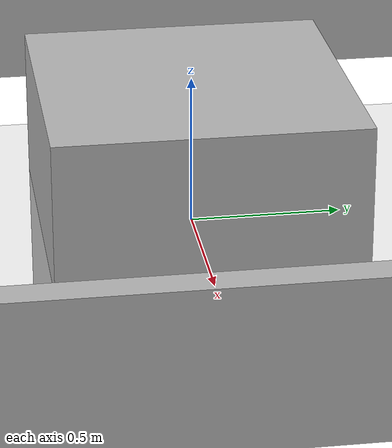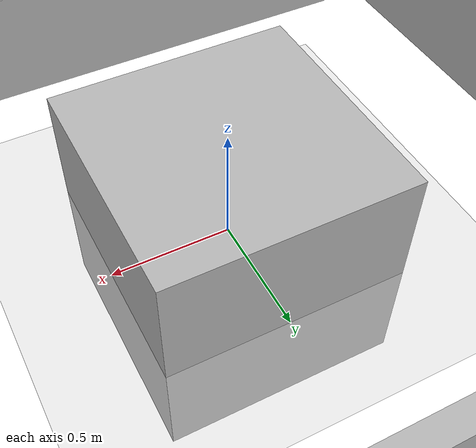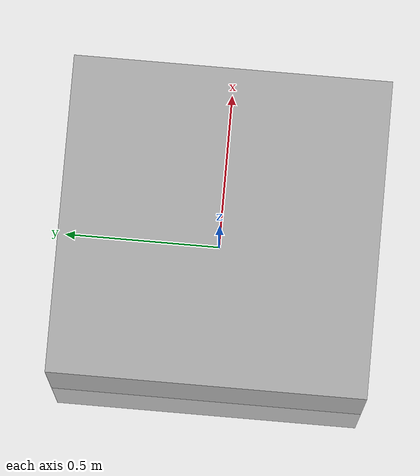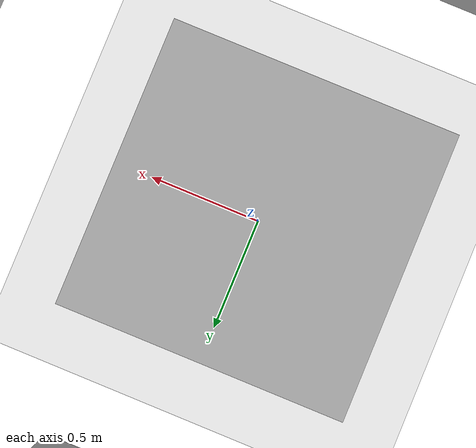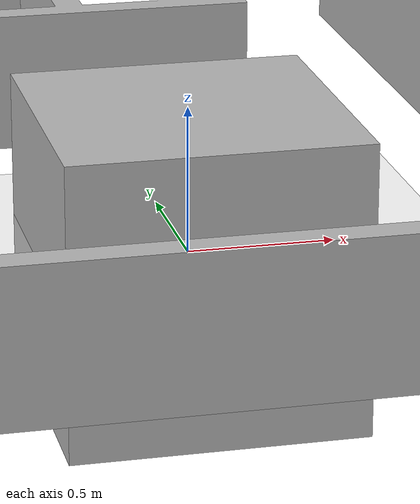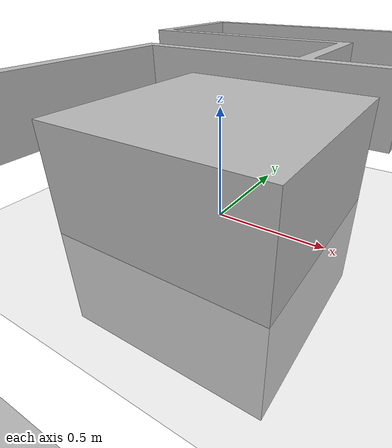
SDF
<?xml version="1.0" ?>
<sdf version="1.5">
  <world name="default">
    <include>
      <uri>model://sun</uri>
    </include>
    <include>
      <uri>model://ground_plane</uri>
    </include>
    <include>
      <uri>model://box2</uri>
      <pose>0 0 0 0 0 0</pose>
    </include>
    <include>
      <uri>model://room1</uri>
      <pose>0 0 0 0 0 0</pose>
    </include>
  </world>
</sdf>

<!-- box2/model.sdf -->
<sdf version="1.4">
<model name="box2">
  <pose>0 0 0.5 0 0 0</pose>
    <link name="link">
      <inertial>
        <mass>1.0</mass>
        <inertia>
          <ixx>0.083</ixx>
          <ixy>0.0</ixy>
          <ixz>0.0</ixz>
          <iyy>0.083</iyy>
          <iyz>0.0</iyz>
          <izz>0.083</izz>
        </inertia>
      </inertial>
      <collision name="collision">
        <geometry>
          <box>
            <size>1 1 1</size>
          </box>
        </geometry>
      </collision>
      <visual name="visual">
        <geometry>
          <box>
            <size>1 1 1</size>
          </box>
        </geometry>
        <material>
          <script>
            <uri>model://box2/materials/test_texture.material</uri>
            <name>TestTexture</name>
          </script>
        </material>
      </visual>
    </link>
  </model>
</sdf>

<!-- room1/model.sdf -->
<sdf version="1.4">
<model name="room1">
  <pose>0 0 0.5 0 0 0</pose>
    <link name="link">
      <inertial>
        <mass>1.0</mass>
        <inertia>
          <ixx>0.083</ixx>
          <ixy>0.0</ixy>
          <ixz>0.0</ixz>
          <iyy>0.083</iyy>
          <iyz>0.0</iyz>
          <izz>0.083</izz>
        </inertia>
      </inertial>
      <collision name="collision">
        <geometry>
          <mesh>
            <uri>model://room1/room_mesh.stl</uri>
          </mesh>
        </geometry>
      </collision>
      <visual name="visual">
        <geometry>
          <mesh>
            <uri>model://room1/room_mesh.stl</uri>
          </mesh>
        </geometry>
      </visual>
    </link>
  </model>
</sdf>
